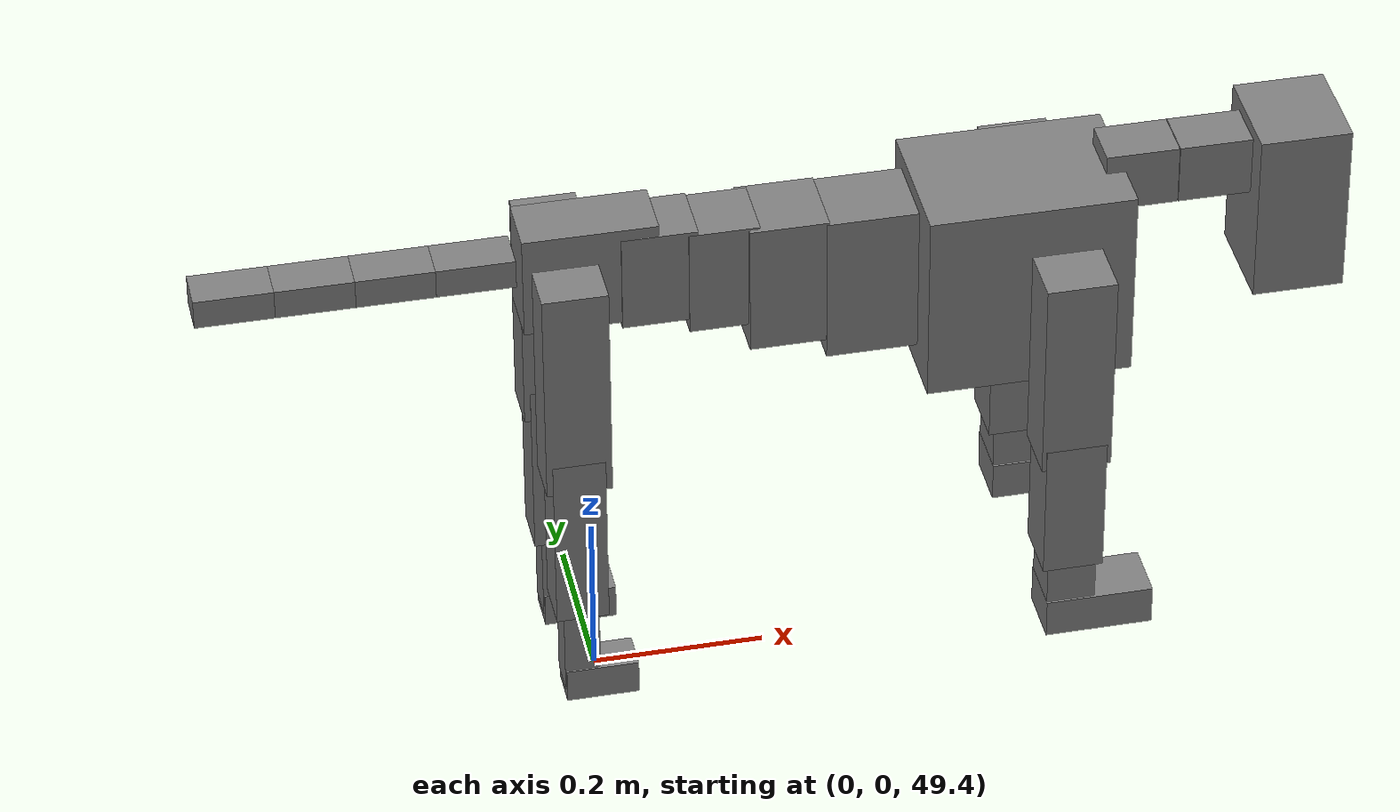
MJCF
<mujoco model="dog">

    <default>
        <joint armature="0.02" stiffness="1" damping="0.2" limited="true"/>
        <geom condim="3" friction="1 0.05 0.05" margin="0.01"/>
        <motor ctrllimited="true" ctrlrange="-1.0 1.0" forcelimited="true" gear="50"/>
    </default>

    <compiler inertiafromgeom="true" angle="radian"/>

    <option timestep="0.016" iterations="50" tolerance="1e-10" solver="Newton" jacobian="dense" cone="pyramidal"/>

    <size nconmax="20000" njmax="60000" nstack="5000000"/>
    <visual>
        <map force="0.1" zfar="30"/>
        <rgba haze="0.15 0.25 0.35 1"/>
        <quality shadowsize="2048"/>
        <global offwidth="800" offheight="800"/>
    </visual>

    <asset>
        <texture type="skybox" builtin="gradient" rgb1="0.3 0.5 0.7" rgb2="0 0 0" width="512" height="512"/>
        <texture name="texplane" type="2d" builtin="checker" rgb1=".2 .3 .4" rgb2=".1 0.15 0.2" width="512" height="512"
                 mark="cross" markrgb=".8 .8 .8"/>
        <texture name="texgeom" type="cube" builtin="flat" mark="cross" width="127" height="1278" rgb1="0.8 0.6 0.4"
                 rgb2="0.8 0.6 0.4" markrgb="1 1 1" random="0.01"/>

        <material name="matplane" reflectance="0.3" texture="texplane" texrepeat="1 1" texuniform="true"/>
        <material name="matgeom" texture="texgeom" texuniform="true" rgba="0.8 0.6 .4 1"/>
    </asset>

    <worldbody>
        <geom name="floor" pos="0 0 0" size="0 0 .25" type="plane" material="matplane" condim="3"/>

        <light directional="false" diffuse=".2 .2 .2" specular="0 0 0" pos="0 0 5" dir="0 0 -1" castshadow="false"/>
        <light mode="targetbodycom" target="torso" directional="false" diffuse=".8 .8 .8" specular="0.3 0.3 0.3"
               pos="0 0 4.0" dir="0 0 -1"/>

        <body name="root" pos="0 0 50">
            <freejoint name="root_1"/>
            <geom type="box" pos="0 0 -0.02" size="0.0774  0.0358  0.063" density="2030"/>

            <body name="spine1" pos="0.054 0 0">
                <joint name="spine1_y" axis="0 1 0" range="0 0.7" limited="true"/>
                <geom type="box" pos="0.02375 0 -0.03" size="0.04375  0.0375  0.05985" density="2030"/>

                <body name="spine2" pos="0.0612 0 0">
                    <joint name="spine2_y" axis="0 1 0" range="-0.15 0.15" limited="true"/>
                    <geom type="box" pos="0.03555  0  -0.04" size="0.04055  0.039  0.06615" density="2030"/>

                    <body name="spine3" pos="0.0730 0 0">
                        <joint name="spine3_y" axis="0 1 0" range="-0.15 0.15" limited="true"/>
                        <geom type="box" pos="0.03555  0  -0.057" size="0.04555  0.0445  0.081" density="2030"/>

                        <body name="spine4" pos="0.0780 0 0">
                            <joint name="spine4_y" axis="0 1 0" range="-0.15 0.15" limited="true"/>
                            <geom type="box" pos="0.05265  0  -0.07" size="0.05265  0.045  0.09135" density="2030"/>

                            <body name="torso" pos="0.1082 0 0">
                                <joint name="torso_y" axis="0 1 0" range="-0.15 0.15" limited="true"/>
                                <geom type="box" pos="0.11925  0  -0.085" size="0.11925  0.085  0.11745"
                                      density="2030"/>

                                <body name="neck1" pos="0.2160  0   0.0180">
                                    <joint name="neck1_y" axis="0 1 0" range="-1.2  -1" limited="true"/>
                                    <geom type="box" pos="0.0423  0  0" size="0.0423  0.03  0.036" density="2325"/>

                                    <body name="neck2" pos="0.0853  0  0">
                                        <joint name="neck2_y" axis="0 1 0" range="0.1  0" limited="true"/>
                                        <geom type="box" pos="0.0423  0  0" size="0.0423  0.03  0.036" density="2325"/>

                                        <body name="head" pos="0.0853  0  0">
                                            <joint name="head_y" axis="0 1 0" range="-0.3  -0.2" limited="true"/>
                                            <geom type="box" pos="0.0531  0  -0.055" size="0.0531  0.06  0.1044"
                                                  density="4030"/>

                                        </body>
                                    </body>
                                </body>

                                <body name="front_shoulder" pos="0.156  0   -0.0480">
                                    <joint name="front_shoulder_y" axis="0 1 0" range="-1 1.5" limited="true"/>
                                    <geom type="box" pos="0 0.13 -0.0990" size="0.0403  0.0345  0.1256" density="1158"/>
                                    <geom type="box" pos="0 -0.13 -0.0990" size="0.0403  0.0345  0.1256"
                                          density="1158"/>

                                    <body name="front_elbow" pos="0  0  -0.1979">
                                        <joint name="front_elbow_y" axis="0 1 0" range="-2 0" limited="true"/>
                                        <geom type="box" pos="0 0.13 -0.0862" size="0.0352  0.0359  0.0862"
                                              density="1081"/>
                                        <geom type="box" pos="0 -0.13 -0.0862" size="0.0352  0.0359  0.0862"
                                              density="1081"/>

                                        <body name="front_wrist" pos="0  0  -0.1724">
                                            <joint name="front_wrist_y" axis="0 1 0" range="-0.2 0" limited="true"/>
                                            <geom type="box" pos="0 0.13 -0.0325" size="0.0284  0.0315  0.0457"
                                                  density="1664"/>
                                            <geom type="box" pos="0 -0.13 -0.0325" size="0.0284  0.0315  0.0457"
                                                  density="1664"/>

                                            <body name="front_finger_end" pos="0  0  -0.0650">
                                                <joint name="front_finger_y" axis="0 1 0" range="-0.4 1"
                                                       limited="true"/>
                                                <geom type="box" pos="0.0343  0.13  -0.0087"
                                                      size="0.0629  0.0343  0.0237" density="1515"/>
                                                <geom type="box" pos="0.0343  -0.13  -0.0087"
                                                      size="0.0629  0.0343  0.0237" density="1515"/>

                                            </body>

                                        </body>
                                    </body>
                                </body>

                            </body>
                        </body>
                    </body>
                </body>
            </body>

            <body name="back_hip" pos="-0.03 0 -0.018">
                <joint name="back_hip_y" axis="0 1 0" range="-1.5 0.3" limited="true"/>
                <geom type="box" pos="0 0.07 -0.1124" size="0.0377  0.0296  0.1352" density="1154"/>
                <geom type="box" pos="0 -0.07 -0.1124" size="0.0377  0.0296  0.1352" density="1154"/>

                <body name="back_knee" pos="0  0  -0.2247">
                    <joint name="back_knee_y" axis="0 1 0" range="0 2.8" limited="true"/>
                    <geom type="box" pos="0 0.07 -0.0955" size="0.0304  0.0299  0.1111" density="1227"/>
                    <geom type="box" pos="0 -0.07 -0.0955" size="0.0304  0.0299  0.1111" density="1227"/>

                    <body name="back_ankle" pos="0  0  -0.1910">
                        <joint name="back_ankle_y" axis="0 1 0" range="-2.2 0" limited="true"/>
                        <geom type="box" pos="0 0.07 -0.0571" size="0.0208  0.0208  0.0683" density="1284"/>
                        <geom type="box" pos="0 -0.07 -0.0571" size="0.0208  0.0208  0.0683" density="1284"/>

                        <body name="back_toe_end" pos="0  0  -0.1142">
                            <joint name="back_toe_y" axis="0 1 0" range="-0.4 1" limited="true"/>
                            <geom type="box" pos="0.0230  0.07  -0.0062" size="0.0423  0.0230  0.0212" density="1515"/>
                            <geom type="box" pos="0.0230  -0.07  -0.0062" size="0.0423  0.0230  0.0212" density="1515"/>

                        </body>
                    </body>
                </body>
            </body>

            <body name="tail1" pos="-0.074 0 -0.006">
                <joint name="tail1_y" axis="0 1 0" range="-0.2 0.2" limited="true"/>
                <geom type="box" pos="-0.0536  0  0" size="0.045  0.025  0.0175" density="1587"/>

                <body name="tail2" pos="-0.09 0 0">
                    <joint name="tail2_y" axis="0 1 0" range="-0.2 0.2" limited="true"/>
                    <geom type="box" pos="-0.0536  0  0" size="0.045  0.025  0.0175" density="1587"/>

                    <body name="tail3" pos="-0.09 0 0">
                        <joint name="tail3_y" axis="0 1 0" range="-0.2 0.2" limited="true"/>
                        <geom type="box" pos="-0.0536  0  0" size="0.045  0.025  0.0175" density="1587"/>

                        <body name="tail4" pos="-0.09 0 0">
                            <joint name="tail4_y" axis="0 1 0" range="-0.2 0.2" limited="true"/>
                            <geom type="box" pos="-0.0536  0  0" size="0.045  0.025  0.0175" density="1587"/>

                        </body>
                    </body>
                </body>
            </body>
        </body>
    </worldbody>

    <actuator>
        <motor joint="spine1_y" forcerange="-150 150     "/>
        <motor joint="spine2_y" forcerange="-150 150     "/>
        <motor joint="spine3_y" forcerange="-150 150     "/>
        <motor joint="spine4_y" forcerange="-150 150     "/>
        <motor joint="torso_y" forcerange="-150 150     "/>
        <motor joint="neck1_y" forcerange="-100 100       "/>
        <motor joint="neck2_y" forcerange="-100 100       "/>
        <motor joint="head_y" forcerange="-150 150       "/>
        <motor joint="front_shoulder_y" forcerange="-196.50 133.36"/>
        <motor joint="front_elbow_y" forcerange="-173.49 187.87"/>
        <motor joint="front_wrist_y" forcerange="-142.57 109.80"/>
        <motor joint="front_finger_y" forcerange="-72.32 70.63"/>
        <motor joint="back_hip_y" forcerange="-285.05 309.68"/>
        <motor joint="back_knee_y" forcerange="-313.72 321.58"/>
        <motor joint="back_angle_y" forcerange="-152.63 80.39"/>
        <motor joint="back_toe_y" forcerange="-35.69 68.70"/>
        <motor joint="tail1_y" forcerange="-50 50     "/>
        <motor joint="tail2_y" forcerange="-50 50     "/>
        <motor joint="tail3_y" forcerange="-50 50     "/>
        <motor joint="tail4_y" forcerange="-50 50     "/>
    </actuator>
</mujoco>
